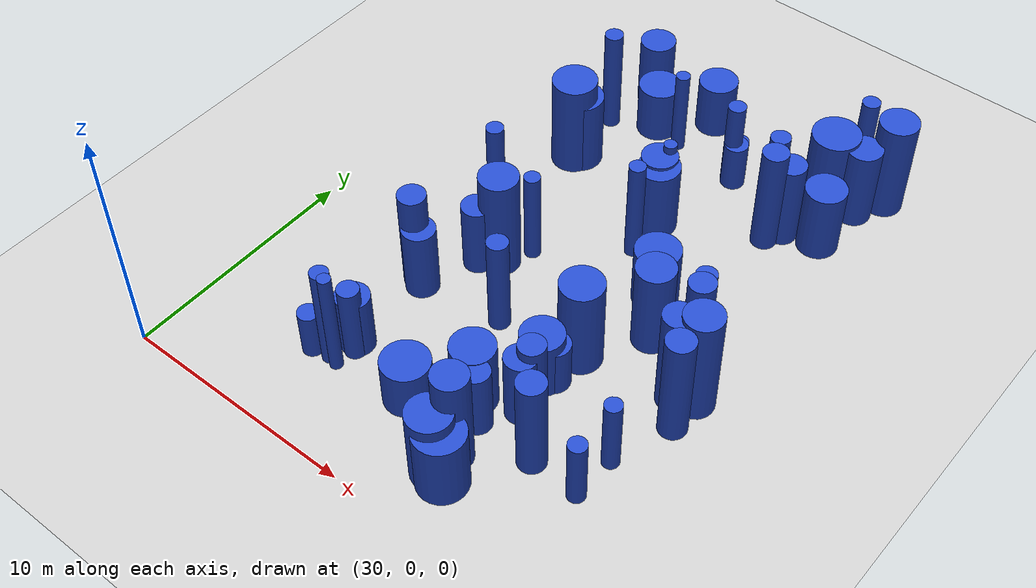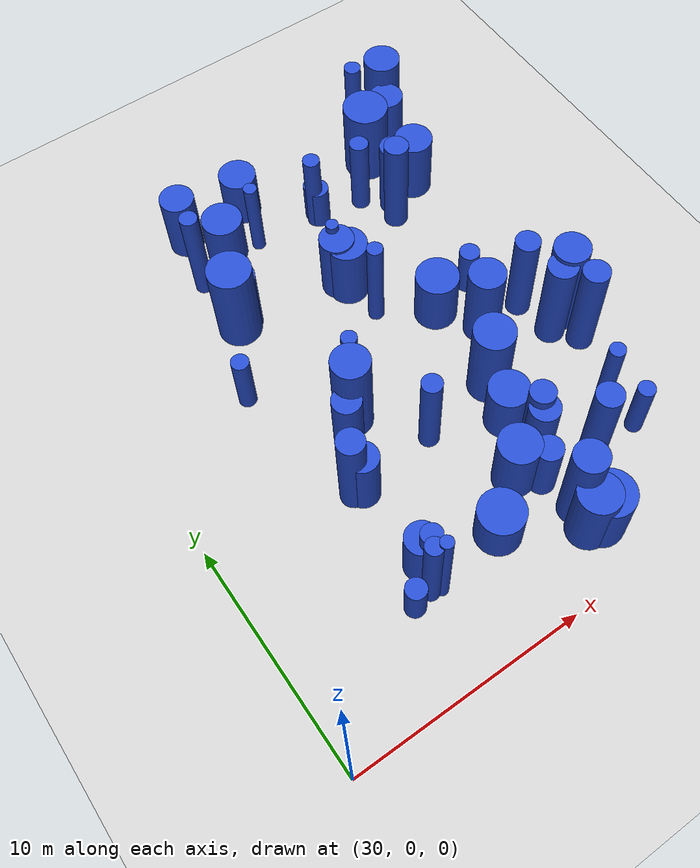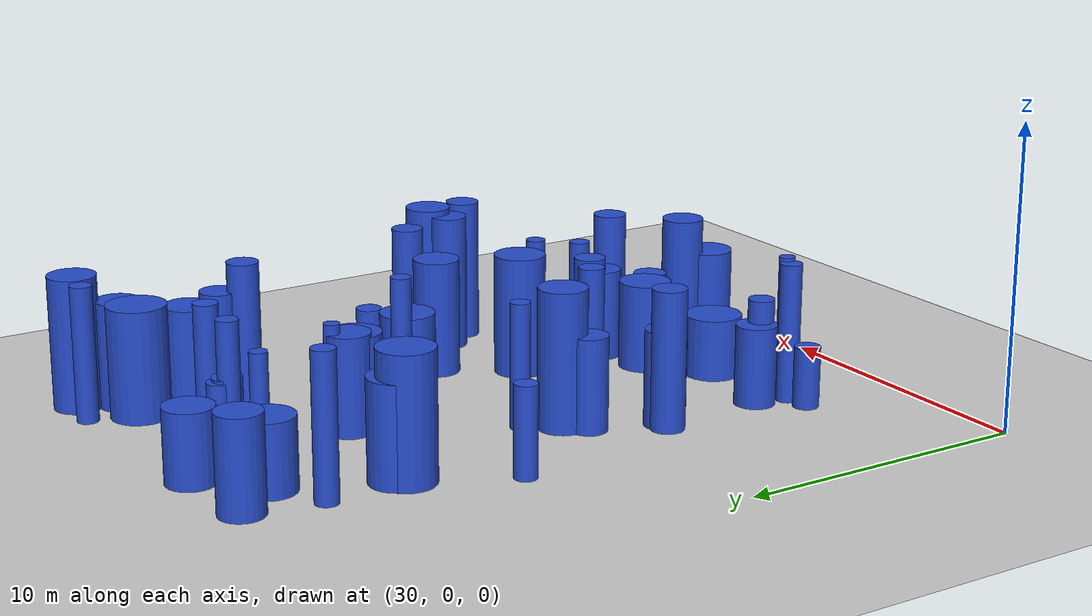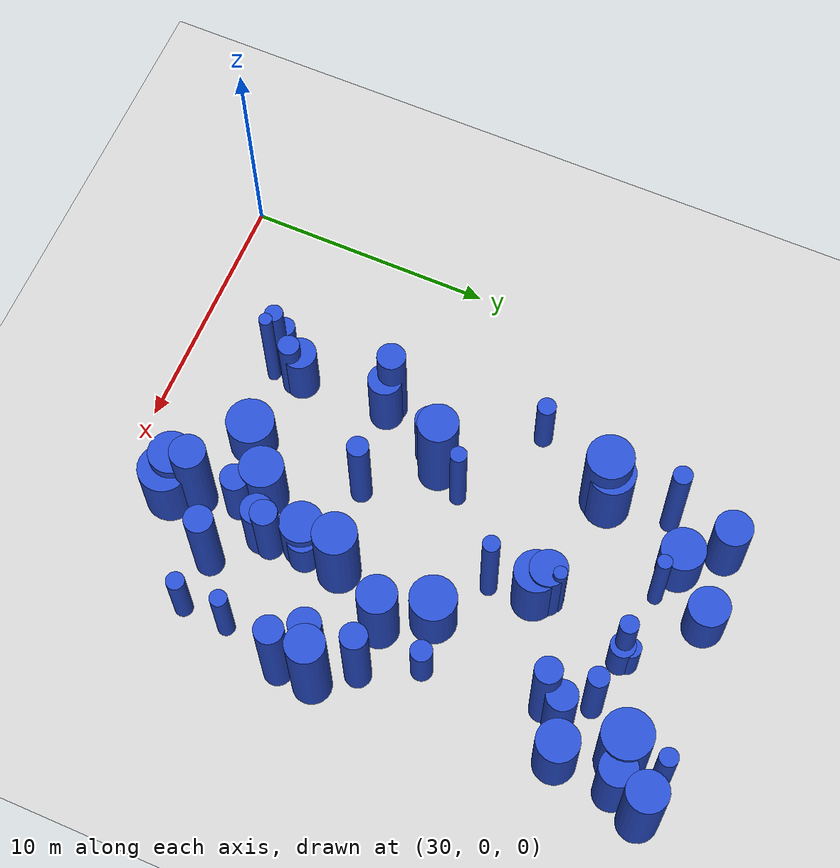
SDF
<sdf version="1.6">
 <world name="default">
  <model name="ground_plane">
   <static>1</static>
   <link name="link">
    <collision name="collision">
     <geometry><plane><normal>0 0 1</normal><size>100 100</size></plane></geometry>
     <surface><friction><ode><mu>100</mu><mu2>50</mu2></ode></friction></surface>
    </collision>
    <visual name="visual">
     <cast_shadows>0</cast_shadows>
     <geometry><plane><normal>0 0 1</normal><size>100 100</size></plane></geometry>
     <material>
      <script><uri>file://media/materials/scripts/gazebo.material</uri><name>Gazebo/Grey</name></script>
     </material>
    </visual>
   </link>
  </model>
  <model name="11">
   <static>0</static>
   <link name="link">
    <inertial>
     <mass>2</mass>
     <inertia><ixx>3.80874</ixx><ixy>0</ixy><ixz>0</ixz><iyy>3.80874</iyy><iyz>0</iyz><izz>0.499703</izz></inertia>
    </inertial>
    <collision name="collision">
     <geometry><cylinder><length>4.62097</length><radius>0.706896</radius></cylinder></geometry>
     <surface><contact><collide_without_contact>1</collide_without_contact></contact></surface>
    </collision>
    <visual name="visual">
     <geometry><cylinder><length>4.62097</length><radius>0.706896</radius></cylinder></geometry>
     <material>
      <script><uri>file://media/materials/scripts/gazebo.material</uri><name>Gazebo/Blue</name></script>
     </material>
    </visual>
    <gravity>0</gravity>
   </link>
   <pose>42.6481 3.33236 2.31048 0 -0 0</pose>
  </model>
  <model name="18">
   <static>0</static>
   <link name="link">
    <inertial>
     <mass>2</mass>
     <inertia>
      <ixx>0.755053</ixx>
      <ixy>0</ixy>
      <ixz>0</ixz>
      <iyy>0.755053</iyy>
      <iyz>0</iyz>
      <izz>0.161134</izz>
     </inertia>
    </inertial>
    <collision name="collision">
     <geometry><cylinder><length>2.01169</length><radius>0.401415</radius></cylinder></geometry>
     <surface><contact><collide_without_contact>1</collide_without_contact></contact></surface>
    </collision>
    <visual name="visual">
     <geometry><cylinder><length>2.01169</length><radius>0.401415</radius></cylinder></geometry>
     <material>
      <script><uri>file://media/materials/scripts/gazebo.material</uri><name>Gazebo/Blue</name></script>
     </material>
    </visual>
    <gravity>0</gravity>
   </link>
   <pose>42.3675 21.2109 1.00585 0 -0 0</pose>
  </model>
  <model name="25">
   <static>0</static>
   <link name="link">
    <inertial>
     <mass>2</mass>
     <inertia><ixx>3.99631</ixx><ixy>0</ixy><ixz>0</ixz><iyy>3.99631</iyy><iyz>0</iyz><izz>0.280628</izz></inertia>
    </inertial>
    <collision name="collision">
     <geometry><cylinder><length>4.80998</length><radius>0.529744</radius></cylinder></geometry>
     <surface><contact><collide_without_contact>1</collide_without_contact></contact></surface>
    </collision>
    <visual name="visual">
     <geometry><cylinder><length>4.80998</length><radius>0.529744</radius></cylinder></geometry>
     <material>
      <script><uri>file://media/materials/scripts/gazebo.material</uri><name>Gazebo/Blue</name></script>
     </material>
    </visual>
    <gravity>0</gravity>
   </link>
   <pose>45.2657 18.9256 2.40499 0 -0 0</pose>
  </model>
  <model name="27">
   <static>0</static>
   <link name="link">
    <inertial>
     <mass>2</mass>
     <inertia><ixx>1.44612</ixx><ixy>0</ixy><ixz>0</ixz><iyy>1.44612</iyy><iyz>0</iyz><izz>0.468528</izz></inertia>
    </inertial>
    <collision name="collision">
     <geometry><cylinder><length>2.69651</length><radius>0.684491</radius></cylinder></geometry>
     <surface><contact><collide_without_contact>1</collide_without_contact></contact></surface>
    </collision>
    <visual name="visual">
     <geometry><cylinder><length>2.69651</length><radius>0.684491</radius></cylinder></geometry>
     <material>
      <script><uri>file://media/materials/scripts/gazebo.material</uri><name>Gazebo/Blue</name></script>
     </material>
    </visual>
    <gravity>0</gravity>
   </link>
   <pose>36.4301 4.9127 1.34825 0 -0 0</pose>
  </model>
  <model name="36">
   <static>0</static>
   <link name="link">
    <inertial>
     <mass>2</mass>
     <inertia><ixx>3.51883</ixx><ixy>0</ixy><ixz>0</ixz><iyy>3.51883</iyy><iyz>0</iyz><izz>0.320908</izz></inertia>
    </inertial>
    <collision name="collision">
     <geometry><cylinder><length>4.4889</length><radius>0.566488</radius></cylinder></geometry>
     <surface><contact><collide_without_contact>1</collide_without_contact></contact></surface>
    </collision>
    <visual name="visual">
     <geometry><cylinder><length>4.4889</length><radius>0.566488</radius></cylinder></geometry>
     <material>
      <script><uri>file://media/materials/scripts/gazebo.material</uri><name>Gazebo/Blue</name></script>
     </material>
    </visual>
    <gravity>0</gravity>
   </link>
   <pose>44.884 4.86893 2.24445 0 -0 0</pose>
  </model>
  <model name="43">
   <static>0</static>
   <link name="link">
    <inertial>
     <mass>2</mass>
     <inertia>
      <ixx>3.81452</ixx>
      <ixy>0</ixy>
      <ixz>0</ixz>
      <iyy>3.81452</iyy>
      <iyz>0</iyz>
      <izz>0.0700208</izz>
     </inertia>
    </inertial>
    <collision name="collision">
     <geometry><cylinder><length>4.76204</length><radius>0.264614</radius></cylinder></geometry>
     <surface><contact><collide_without_contact>1</collide_without_contact></contact></surface>
    </collision>
    <visual name="visual">
     <geometry><cylinder><length>4.76204</length><radius>0.264614</radius></cylinder></geometry>
     <material>
      <script><uri>file://media/materials/scripts/gazebo.material</uri><name>Gazebo/Blue</name></script>
     </material>
    </visual>
    <gravity>0</gravity>
   </link>
   <pose>36.5145 3.67072 2.38102 0 -0 0</pose>
  </model>
  <model name="68">
   <static>0</static>
   <link name="link">
    <inertial>
     <mass>2</mass>
     <inertia><ixx>2.41844</ixx><ixy>0</ixy><ixz>0</ixz><iyy>2.41844</iyy><iyz>0</iyz><izz>0.53192</izz></inertia>
    </inertial>
    <collision name="collision">
     <geometry><cylinder><length>3.59373</length><radius>0.729328</radius></cylinder></geometry>
     <surface><contact><collide_without_contact>1</collide_without_contact></contact></surface>
    </collision>
    <visual name="visual">
     <geometry><cylinder><length>3.59373</length><radius>0.729328</radius></cylinder></geometry>
     <material>
      <script><uri>file://media/materials/scripts/gazebo.material</uri><name>Gazebo/Blue</name></script>
     </material>
    </visual>
    <gravity>0</gravity>
   </link>
   <pose>47.2387 22.452 1.79686 0 -0 0</pose>
  </model>
  <model name="72">
   <static>0</static>
   <link name="link">
    <inertial>
     <mass>2</mass>
     <inertia><ixx>2.09914</ixx><ixy>0</ixy><ixz>0</ixz><iyy>2.09914</iyy><iyz>0</iyz><izz>0.55611</izz></inertia>
    </inertial>
    <collision name="collision">
     <geometry><cylinder><length>3.30553</length><radius>0.745728</radius></cylinder></geometry>
     <surface><contact><collide_without_contact>1</collide_without_contact></contact></surface>
    </collision>
    <visual name="visual">
     <geometry><cylinder><length>3.30553</length><radius>0.745728</radius></cylinder></geometry>
     <material>
      <script><uri>file://media/materials/scripts/gazebo.material</uri><name>Gazebo/Blue</name></script>
     </material>
    </visual>
    <gravity>0</gravity>
   </link>
   <pose>41.124 17.3426 1.65277 0 -0 0</pose>
  </model>
  <model name="74">
   <static>0</static>
   <link name="link">
    <inertial>
     <mass>2</mass>
     <inertia><ixx>3.74291</ixx><ixy>0</ixy><ixz>0</ixz><iyy>3.74291</iyy><iyz>0</iyz><izz>0.319595</izz></inertia>
    </inertial>
    <collision name="collision">
     <geometry><cylinder><length>4.63667</length><radius>0.565327</radius></cylinder></geometry>
     <surface><contact><collide_without_contact>1</collide_without_contact></contact></surface>
    </collision>
    <visual name="visual">
     <geometry><cylinder><length>4.63667</length><radius>0.565327</radius></cylinder></geometry>
     <material>
      <script><uri>file://media/materials/scripts/gazebo.material</uri><name>Gazebo/Blue</name></script>
     </material>
    </visual>
    <gravity>0</gravity>
   </link>
   <pose>36.0139 8.72628 2.31833 0 -0 0</pose>
  </model>
  <model name="86">
   <static>0</static>
   <link name="link">
    <inertial>
     <mass>2</mass>
     <inertia><ixx>2.28266</ixx><ixy>0</ixy><ixz>0</ixz><iyy>2.28266</iyy><iyz>0</iyz><izz>0.845902</izz></inertia>
    </inertial>
    <collision name="collision">
     <geometry><cylinder><length>3.3404</length><radius>0.919729</radius></cylinder></geometry>
     <surface><contact><collide_without_contact>1</collide_without_contact></contact></surface>
    </collision>
    <visual name="visual">
     <geometry><cylinder><length>3.3404</length><radius>0.919729</radius></cylinder></geometry>
     <material>
      <script><uri>file://media/materials/scripts/gazebo.material</uri><name>Gazebo/Blue</name></script>
     </material>
    </visual>
    <gravity>0</gravity>
   </link>
   <pose>36.6208 18.1374 1.6702 0 -0 0</pose>
  </model>
  <model name="108">
   <static>0</static>
   <link name="link">
    <inertial>
     <mass>2</mass>
     <inertia><ixx>1.89458</ixx><ixy>0</ixy><ixz>0</ixz><iyy>1.89458</iyy><iyz>0</iyz><izz>0.771832</izz></inertia>
    </inertial>
    <collision name="collision">
     <geometry><cylinder><length>3.00865</length><radius>0.87854</radius></cylinder></geometry>
     <surface><contact><collide_without_contact>1</collide_without_contact></contact></surface>
    </collision>
    <visual name="visual">
     <geometry><cylinder><length>3.00865</length><radius>0.87854</radius></cylinder></geometry>
     <material>
      <script><uri>file://media/materials/scripts/gazebo.material</uri><name>Gazebo/Blue</name></script>
     </material>
    </visual>
    <gravity>0</gravity>
   </link>
   <pose>41.5256 5.71485 1.50433 0 -0 0</pose>
  </model>
  <model name="134">
   <static>0</static>
   <link name="link">
    <inertial>
     <mass>2</mass>
     <inertia>
      <ixx>0.788618</ixx>
      <ixy>0</ixy>
      <ixz>0</ixz>
      <iyy>0.788618</iyy>
      <iyz>0</iyz>
      <izz>0.186006</izz>
     </inertia>
    </inertial>
    <collision name="collision">
     <geometry><cylinder><length>2.04296</length><radius>0.431284</radius></cylinder></geometry>
     <surface><contact><collide_without_contact>1</collide_without_contact></contact></surface>
    </collision>
    <visual name="visual">
     <geometry><cylinder><length>2.04296</length><radius>0.431284</radius></cylinder></geometry>
     <material>
      <script><uri>file://media/materials/scripts/gazebo.material</uri><name>Gazebo/Blue</name></script>
     </material>
    </visual>
    <gravity>0</gravity>
   </link>
   <pose>35.3037 3.69044 1.02148 0 -0 0</pose>
  </model>
  <model name="142">
   <static>0</static>
   <link name="link">
    <inertial>
     <mass>2</mass>
     <inertia><ixx>2.94757</ixx><ixy>0</ixy><ixz>0</ixz><iyy>2.94757</iyy><iyz>0</iyz><izz>0.109963</izz></inertia>
    </inertial>
    <collision name="collision">
     <geometry><cylinder><length>4.166</length><radius>0.331607</radius></cylinder></geometry>
     <surface><contact><collide_without_contact>1</collide_without_contact></contact></surface>
    </collision>
    <visual name="visual">
     <geometry><cylinder><length>4.166</length><radius>0.331607</radius></cylinder></geometry>
     <material>
      <script><uri>file://media/materials/scripts/gazebo.material</uri><name>Gazebo/Blue</name></script>
     </material>
    </visual>
    <gravity>0</gravity>
   </link>
   <pose>38.5649 12.612 2.083 0 -0 0</pose>
  </model>
  <model name="146">
   <static>0</static>
   <link name="link">
    <inertial>
     <mass>2</mass>
     <inertia>
      <ixx>2.51646</ixx>
      <ixy>0</ixy>
      <ixz>0</ixz>
      <iyy>2.51646</iyy>
      <iyz>0</iyz>
      <izz>0.0857115</izz>
     </inertia>
    </inertial>
    <collision name="collision">
     <geometry><cylinder><length>3.85248</length><radius>0.292765</radius></cylinder></geometry>
     <surface><contact><collide_without_contact>1</collide_without_contact></contact></surface>
    </collision>
    <visual name="visual">
     <geometry><cylinder><length>3.85248</length><radius>0.292765</radius></cylinder></geometry>
     <material>
      <script><uri>file://media/materials/scripts/gazebo.material</uri><name>Gazebo/Blue</name></script>
     </material>
    </visual>
    <gravity>0</gravity>
   </link>
   <pose>39.4106 21.2297 1.92624 0 -0 0</pose>
  </model>
  <model name="157">
   <static>0</static>
   <link name="link">
    <inertial>
     <mass>2</mass>
     <inertia><ixx>3.46825</ixx><ixy>0</ixy><ixz>0</ixz><iyy>3.46825</iyy><iyz>0</iyz><izz>0.134053</izz></inertia>
    </inertial>
    <collision name="collision">
     <geometry><cylinder><length>4.51745</length><radius>0.366133</radius></cylinder></geometry>
     <surface><contact><collide_without_contact>1</collide_without_contact></contact></surface>
    </collision>
    <visual name="visual">
     <geometry><cylinder><length>4.51745</length><radius>0.366133</radius></cylinder></geometry>
     <material>
      <script><uri>file://media/materials/scripts/gazebo.material</uri><name>Gazebo/Blue</name></script>
     </material>
    </visual>
    <gravity>0</gravity>
   </link>
   <pose>46.4594 23.9461 2.25872 0 -0 0</pose>
  </model>
  <model name="159">
   <static>0</static>
   <link name="link">
    <inertial>
     <mass>2</mass>
     <inertia><ixx>1.47575</ixx><ixy>0</ixy><ixz>0</ixz><iyy>1.47575</iyy><iyz>0</iyz><izz>0.742642</izz></inertia>
    </inertial>
    <collision name="collision">
     <geometry><cylinder><length>2.57422</length><radius>0.861767</radius></cylinder></geometry>
     <surface><contact><collide_without_contact>1</collide_without_contact></contact></surface>
    </collision>
    <visual name="visual">
     <geometry><cylinder><length>2.57422</length><radius>0.861767</radius></cylinder></geometry>
     <material>
      <script><uri>file://media/materials/scripts/gazebo.material</uri><name>Gazebo/Blue</name></script>
     </material>
    </visual>
    <gravity>0</gravity>
   </link>
   <pose>42.8436 7.96022 1.28711 0 -0 0</pose>
  </model>
  <model name="160">
   <static>0</static>
   <link name="link">
    <inertial>
     <mass>2</mass>
     <inertia><ixx>2.06953</ixx><ixy>0</ixy><ixz>0</ixz><iyy>2.06953</iyy><iyz>0</iyz><izz>0.748875</izz></inertia>
    </inertial>
    <collision name="collision">
     <geometry><cylinder><length>3.18913</length><radius>0.865375</radius></cylinder></geometry>
     <surface><contact><collide_without_contact>1</collide_without_contact></contact></surface>
    </collision>
    <visual name="visual">
     <geometry><cylinder><length>3.18913</length><radius>0.865375</radius></cylinder></geometry>
     <material>
      <script><uri>file://media/materials/scripts/gazebo.material</uri><name>Gazebo/Blue</name></script>
     </material>
    </visual>
    <gravity>0</gravity>
   </link>
   <pose>41.3788 16.9585 1.59456 0 -0 0</pose>
  </model>
  <model name="168">
   <static>0</static>
   <link name="link">
    <inertial>
     <mass>2</mass>
     <inertia><ixx>3.91282</ixx><ixy>0</ixy><ixz>0</ixz><iyy>3.91282</iyy><iyz>0</iyz><izz>0.64338</izz></inertia>
    </inertial>
    <collision name="collision">
     <geometry><cylinder><length>4.64185</length><radius>0.80211</radius></cylinder></geometry>
     <surface><contact><collide_without_contact>1</collide_without_contact></contact></surface>
    </collision>
    <visual name="visual">
     <geometry><cylinder><length>4.64185</length><radius>0.80211</radius></cylinder></geometry>
     <material>
      <script><uri>file://media/materials/scripts/gazebo.material</uri><name>Gazebo/Blue</name></script>
     </material>
    </visual>
    <gravity>0</gravity>
   </link>
   <pose>37.8783 11.4759 2.32093 0 -0 0</pose>
  </model>
  <model name="170">
   <static>0</static>
   <link name="link">
    <inertial>
     <mass>2</mass>
     <inertia><ixx>4.14608</ixx><ixy>0</ixy><ixz>0</ixz><iyy>4.14608</iyy><iyz>0</iyz><izz>0.325372</izz></inertia>
    </inertial>
    <collision name="collision">
     <geometry><cylinder><length>4.8888</length><radius>0.570414</radius></cylinder></geometry>
     <surface><contact><collide_without_contact>1</collide_without_contact></contact></surface>
    </collision>
    <visual name="visual">
     <geometry><cylinder><length>4.8888</length><radius>0.570414</radius></cylinder></geometry>
     <material>
      <script><uri>file://media/materials/scripts/gazebo.material</uri><name>Gazebo/Blue</name></script>
     </material>
    </visual>
    <gravity>0</gravity>
   </link>
   <pose>47.853 9.16861 2.4444 0 -0 0</pose>
  </model>
  <model name="173">
   <static>0</static>
   <link name="link">
    <inertial>
     <mass>2</mass>
     <inertia><ixx>2.65741</ixx><ixy>0</ixy><ixz>0</ixz><iyy>2.65741</iyy><iyz>0</iyz><izz>0.370708</izz></inertia>
    </inertial>
    <collision name="collision">
     <geometry><cylinder><length>3.85127</length><radius>0.608858</radius></cylinder></geometry>
     <surface><contact><collide_without_contact>1</collide_without_contact></contact></surface>
    </collision>
    <visual name="visual">
     <geometry><cylinder><length>3.85127</length><radius>0.608858</radius></cylinder></geometry>
     <material>
      <script><uri>file://media/materials/scripts/gazebo.material</uri><name>Gazebo/Blue</name></script>
     </material>
    </visual>
    <gravity>0</gravity>
   </link>
   <pose>45.6421 19.6514 1.92564 0 -0 0</pose>
  </model>
  <model name="179">
   <static>0</static>
   <link name="link">
    <inertial>
     <mass>2</mass>
     <inertia>
      <ixx>0.859238</ixx>
      <ixy>0</ixy>
      <ixz>0</ixz>
      <iyy>0.859238</iyy>
      <iyz>0</iyz>
      <izz>0.245358</izz>
     </inertia>
    </inertial>
    <collision name="collision">
     <geometry><cylinder><length>2.10223</length><radius>0.495337</radius></cylinder></geometry>
     <surface><contact><collide_without_contact>1</collide_without_contact></contact></surface>
    </collision>
    <visual name="visual">
     <geometry><cylinder><length>2.10223</length><radius>0.495337</radius></cylinder></geometry>
     <material>
      <script><uri>file://media/materials/scripts/gazebo.material</uri><name>Gazebo/Blue</name></script>
     </material>
    </visual>
    <gravity>0</gravity>
   </link>
   <pose>42.4258 20.9007 1.05111 0 -0 0</pose>
  </model>
  <model name="182">
   <static>0</static>
   <link name="link">
    <inertial>
     <mass>2</mass>
     <inertia><ixx>2.82944</ixx><ixy>0</ixy><ixz>0</ixz><iyy>2.82944</iyy><iyz>0</iyz><izz>0.978961</izz></inertia>
    </inertial>
    <collision name="collision">
     <geometry><cylinder><length>3.74697</length><radius>0.989425</radius></cylinder></geometry>
     <surface><contact><collide_without_contact>1</collide_without_contact></contact></surface>
    </collision>
    <visual name="visual">
     <geometry><cylinder><length>3.74697</length><radius>0.989425</radius></cylinder></geometry>
     <material>
      <script><uri>file://media/materials/scripts/gazebo.material</uri><name>Gazebo/Blue</name></script>
     </material>
    </visual>
    <gravity>0</gravity>
   </link>
   <pose>46.0089 22.3169 1.87348 0 -0 0</pose>
  </model>
  <model name="184">
   <static>0</static>
   <link name="link">
    <inertial>
     <mass>2</mass>
     <inertia><ixx>2.09227</ixx><ixy>0</ixy><ixz>0</ixz><iyy>2.09227</iyy><iyz>0</iyz><izz>0.189244</izz></inertia>
    </inertial>
    <collision name="collision">
     <geometry><cylinder><length>3.46206</length><radius>0.435022</radius></cylinder></geometry>
     <surface><contact><collide_without_contact>1</collide_without_contact></contact></surface>
    </collision>
    <visual name="visual">
     <geometry><cylinder><length>3.46206</length><radius>0.435022</radius></cylinder></geometry>
     <material>
      <script><uri>file://media/materials/scripts/gazebo.material</uri><name>Gazebo/Blue</name></script>
     </material>
    </visual>
    <gravity>0</gravity>
   </link>
   <pose>36.6118 4.59693 1.73103 0 -0 0</pose>
  </model>
  <model name="207">
   <static>0</static>
   <link name="link">
    <inertial>
     <mass>2</mass>
     <inertia><ixx>1.64041</ixx><ixy>0</ixy><ixz>0</ixz><iyy>1.64041</iyy><iyz>0</iyz><izz>0.317398</izz></inertia>
    </inertial>
    <collision name="collision">
     <geometry><cylinder><length>2.98165</length><radius>0.563381</radius></cylinder></geometry>
     <surface><contact><collide_without_contact>1</collide_without_contact></contact></surface>
    </collision>
    <visual name="visual">
     <geometry><cylinder><length>2.98165</length><radius>0.563381</radius></cylinder></geometry>
     <material>
      <script><uri>file://media/materials/scripts/gazebo.material</uri><name>Gazebo/Blue</name></script>
     </material>
    </visual>
    <gravity>0</gravity>
   </link>
   <pose>42.3185 4.94348 1.49083 0 -0 0</pose>
  </model>
  <model name="215">
   <static>0</static>
   <link name="link">
    <inertial>
     <mass>2</mass>
     <inertia><ixx>1.82664</ixx><ixy>0</ixy><ixz>0</ixz><iyy>1.82664</iyy><iyz>0</iyz><izz>0.408005</izz></inertia>
    </inertial>
    <collision name="collision">
     <geometry><cylinder><length>3.12023</length><radius>0.638753</radius></cylinder></geometry>
     <surface><contact><collide_without_contact>1</collide_without_contact></contact></surface>
    </collision>
    <visual name="visual">
     <geometry><cylinder><length>3.12023</length><radius>0.638753</radius></cylinder></geometry>
     <material>
      <script><uri>file://media/materials/scripts/gazebo.material</uri><name>Gazebo/Blue</name></script>
     </material>
    </visual>
    <gravity>0</gravity>
   </link>
   <pose>43.2111 6.31714 1.56011 0 -0 0</pose>
  </model>
  <model name="222">
   <static>0</static>
   <link name="link">
    <inertial>
     <mass>2</mass>
     <inertia><ixx>1.93129</ixx><ixy>0</ixy><ixz>0</ixz><iyy>1.93129</iyy><iyz>0</iyz><izz>0.551165</izz></inertia>
    </inertial>
    <collision name="collision">
     <geometry><cylinder><length>3.15186</length><radius>0.742405</radius></cylinder></geometry>
     <surface><contact><collide_without_contact>1</collide_without_contact></contact></surface>
    </collision>
    <visual name="visual">
     <geometry><cylinder><length>3.15186</length><radius>0.742405</radius></cylinder></geometry>
     <material>
      <script><uri>file://media/materials/scripts/gazebo.material</uri><name>Gazebo/Blue</name></script>
     </material>
    </visual>
    <gravity>0</gravity>
   </link>
   <pose>36.8387 23.1165 1.57593 0 -0 0</pose>
  </model>
  <model name="226">
   <static>0</static>
   <link name="link">
    <inertial>
     <mass>2</mass>
     <inertia><ixx>1.93903</ixx><ixy>0</ixy><ixz>0</ixz><iyy>1.93903</iyy><iyz>0</iyz><izz>0.701202</izz></inertia>
    </inertial>
    <collision name="collision">
     <geometry><cylinder><length>3.08716</length><radius>0.837378</radius></cylinder></geometry>
     <surface><contact><collide_without_contact>1</collide_without_contact></contact></surface>
    </collision>
    <visual name="visual">
     <geometry><cylinder><length>3.08716</length><radius>0.837378</radius></cylinder></geometry>
     <material>
      <script><uri>file://media/materials/scripts/gazebo.material</uri><name>Gazebo/Blue</name></script>
     </material>
    </visual>
    <gravity>0</gravity>
   </link>
   <pose>47.0281 20.0922 1.54358 0 -0 0</pose>
  </model>
  <model name="227">
   <static>0</static>
   <link name="link">
    <inertial>
     <mass>2</mass>
     <inertia><ixx>1.84648</ixx><ixy>0</ixy><ixz>0</ixz><iyy>1.84648</iyy><iyz>0</iyz><izz>0.377681</izz></inertia>
    </inertial>
    <collision name="collision">
     <geometry><cylinder><length>3.15371</length><radius>0.614557</radius></cylinder></geometry>
     <surface><contact><collide_without_contact>1</collide_without_contact></contact></surface>
    </collision>
    <visual name="visual">
     <geometry><cylinder><length>3.15371</length><radius>0.614557</radius></cylinder></geometry>
     <material>
      <script><uri>file://media/materials/scripts/gazebo.material</uri><name>Gazebo/Blue</name></script>
     </material>
    </visual>
    <gravity>0</gravity>
   </link>
   <pose>37.2464 10.8875 1.57685 0 -0 0</pose>
  </model>
  <model name="229">
   <static>0</static>
   <link name="link">
    <inertial>
     <mass>2</mass>
     <inertia><ixx>1.56166</ixx><ixy>0</ixy><ixz>0</ixz><iyy>1.56166</iyy><iyz>0</iyz><izz>0.140164</izz></inertia>
    </inertial>
    <collision name="collision">
     <geometry><cylinder><length>2.99157</length><radius>0.374385</radius></cylinder></geometry>
     <surface><contact><collide_without_contact>1</collide_without_contact></contact></surface>
    </collision>
    <visual name="visual">
     <geometry><cylinder><length>2.99157</length><radius>0.374385</radius></cylinder></geometry>
     <material>
      <script><uri>file://media/materials/scripts/gazebo.material</uri><name>Gazebo/Blue</name></script>
     </material>
    </visual>
    <gravity>0</gravity>
   </link>
   <pose>34.8659 14.758 1.49578 0 -0 0</pose>
  </model>
  <model name="230">
   <static>0</static>
   <link name="link">
    <inertial>
     <mass>2</mass>
     <inertia><ixx>3.64776</ixx><ixy>0</ixy><ixz>0</ixz><iyy>3.64776</iyy><iyz>0</iyz><izz>0.643686</izz></inertia>
    </inertial>
    <collision name="collision">
     <geometry><cylinder><length>4.46716</length><radius>0.8023</radius></cylinder></geometry>
     <surface><contact><collide_without_contact>1</collide_without_contact></contact></surface>
    </collision>
    <visual name="visual">
     <geometry><cylinder><length>4.46716</length><radius>0.8023</radius></cylinder></geometry>
     <material>
      <script><uri>file://media/materials/scripts/gazebo.material</uri><name>Gazebo/Blue</name></script>
     </material>
    </visual>
    <gravity>0</gravity>
   </link>
   <pose>47.8741 23.7045 2.23358 0 -0 0</pose>
  </model>
  <model name="234">
   <static>0</static>
   <link name="link">
    <inertial>
     <mass>2</mass>
     <inertia><ixx>2.23863</ixx><ixy>0</ixy><ixz>0</ixz><iyy>2.23863</iyy><iyz>0</iyz><izz>0.288161</izz></inertia>
    </inertial>
    <collision name="collision">
     <geometry><cylinder><length>3.54504</length><radius>0.536806</radius></cylinder></geometry>
     <surface><contact><collide_without_contact>1</collide_without_contact></contact></surface>
    </collision>
    <visual name="visual">
     <geometry><cylinder><length>3.54504</length><radius>0.536806</radius></cylinder></geometry>
     <material>
      <script><uri>file://media/materials/scripts/gazebo.material</uri><name>Gazebo/Blue</name></script>
     </material>
    </visual>
    <gravity>0</gravity>
   </link>
   <pose>43.3808 6.73123 1.77252 0 -0 0</pose>
  </model>
  <model name="248">
   <static>0</static>
   <link name="link">
    <inertial>
     <mass>2</mass>
     <inertia><ixx>1.91592</ixx><ixy>0</ixy><ixz>0</ixz><iyy>1.91592</iyy><iyz>0</iyz><izz>0.999797</izz></inertia>
    </inertial>
    <collision name="collision">
     <geometry><cylinder><length>2.91481</length><radius>0.999898</radius></cylinder></geometry>
     <surface><contact><collide_without_contact>1</collide_without_contact></contact></surface>
    </collision>
    <visual name="visual">
     <geometry><cylinder><length>2.91481</length><radius>0.999898</radius></cylinder></geometry>
     <material>
      <script><uri>file://media/materials/scripts/gazebo.material</uri><name>Gazebo/Blue</name></script>
     </material>
    </visual>
    <gravity>0</gravity>
   </link>
   <pose>43.0164 2.26383 1.45741 0 -0 0</pose>
  </model>
  <model name="261">
   <static>0</static>
   <link name="link">
    <inertial>
     <mass>2</mass>
     <inertia><ixx>3.86022</ixx><ixy>0</ixy><ixz>0</ixz><iyy>3.86022</iyy><iyz>0</iyz><izz>0.401054</izz></inertia>
    </inertial>
    <collision name="collision">
     <geometry><cylinder><length>4.68596</length><radius>0.633288</radius></cylinder></geometry>
     <surface><contact><collide_without_contact>1</collide_without_contact></contact></surface>
    </collision>
    <visual name="visual">
     <geometry><cylinder><length>4.68596</length><radius>0.633288</radius></cylinder></geometry>
     <material>
      <script><uri>file://media/materials/scripts/gazebo.material</uri><name>Gazebo/Blue</name></script>
     </material>
    </visual>
    <gravity>0</gravity>
   </link>
   <pose>47.0713 10.2075 2.34298 0 -0 0</pose>
  </model>
  <model name="273">
   <static>0</static>
   <link name="link">
    <inertial>
     <mass>2</mass>
     <inertia><ixx>2.92525</ixx><ixy>0</ixy><ixz>0</ixz><iyy>2.92525</iyy><iyz>0</iyz><izz>0.610163</izz></inertia>
    </inertial>
    <collision name="collision">
     <geometry><cylinder><length>3.96497</length><radius>0.781129</radius></cylinder></geometry>
     <surface><contact><collide_without_contact>1</collide_without_contact></contact></surface>
    </collision>
    <visual name="visual">
     <geometry><cylinder><length>3.96497</length><radius>0.781129</radius></cylinder></geometry>
     <material>
      <script><uri>file://media/materials/scripts/gazebo.material</uri><name>Gazebo/Blue</name></script>
     </material>
    </visual>
    <gravity>0</gravity>
   </link>
   <pose>44.804 12.0158 1.98249 0 -0 0</pose>
  </model>
  <model name="278">
   <static>0</static>
   <link name="link">
    <inertial>
     <mass>2</mass>
     <inertia><ixx>1.01768</ixx><ixy>0</ixy><ixz>0</ixz><iyy>1.01768</iyy><iyz>0</iyz><izz>0.189489</izz></inertia>
    </inertial>
    <collision name="collision">
     <geometry><cylinder><length>2.35321</length><radius>0.435303</radius></cylinder></geometry>
     <surface><contact><collide_without_contact>1</collide_without_contact></contact></surface>
    </collision>
    <visual name="visual">
     <geometry><cylinder><length>2.35321</length><radius>0.435303</radius></cylinder></geometry>
     <material>
      <script><uri>file://media/materials/scripts/gazebo.material</uri><name>Gazebo/Blue</name></script>
     </material>
    </visual>
    <gravity>0</gravity>
   </link>
   <pose>45.6592 14.1516 1.17661 0 -0 0</pose>
  </model>
  <model name="280">
   <static>0</static>
   <link name="link">
    <inertial>
     <mass>2</mass>
     <inertia><ixx>1.53437</ixx><ixy>0</ixy><ixz>0</ixz><iyy>1.53437</iyy><iyz>0</iyz><izz>0.133804</izz></inertia>
    </inertial>
    <collision name="collision">
     <geometry><cylinder><length>2.96729</length><radius>0.365792</radius></cylinder></geometry>
     <surface><contact><collide_without_contact>1</collide_without_contact></contact></surface>
    </collision>
    <visual name="visual">
     <geometry><cylinder><length>2.96729</length><radius>0.365792</radius></cylinder></geometry>
     <material>
      <script><uri>file://media/materials/scripts/gazebo.material</uri><name>Gazebo/Blue</name></script>
     </material>
    </visual>
    <gravity>0</gravity>
   </link>
   <pose>46.9613 4.75114 1.48365 0 -0 0</pose>
  </model>
  <model name="285">
   <static>0</static>
   <link name="link">
    <inertial>
     <mass>2</mass>
     <inertia><ixx>3.61661</ixx><ixy>0</ixy><ixz>0</ixz><iyy>3.61661</iyy><iyz>0</iyz><izz>0.281375</izz></inertia>
    </inertial>
    <collision name="collision">
     <geometry><cylinder><length>4.56679</length><radius>0.530447</radius></cylinder></geometry>
     <surface><contact><collide_without_contact>1</collide_without_contact></contact></surface>
    </collision>
    <visual name="visual">
     <geometry><cylinder><length>4.56679</length><radius>0.530447</radius></cylinder></geometry>
     <material>
      <script><uri>file://media/materials/scripts/gazebo.material</uri><name>Gazebo/Blue</name></script>
     </material>
    </visual>
    <gravity>0</gravity>
   </link>
   <pose>46.7733 12.0043 2.28339 0 -0 0</pose>
  </model>
  <model name="292">
   <static>0</static>
   <link name="link">
    <inertial>
     <mass>2</mass>
     <inertia><ixx>3.68193</ixx><ixy>0</ixy><ixz>0</ixz><iyy>3.68193</iyy><iyz>0</iyz><izz>0.132964</izz></inertia>
    </inertial>
    <collision name="collision">
     <geometry><cylinder><length>4.65754</length><radius>0.364643</radius></cylinder></geometry>
     <surface><contact><collide_without_contact>1</collide_without_contact></contact></surface>
    </collision>
    <visual name="visual">
     <geometry><cylinder><length>4.65754</length><radius>0.364643</radius></cylinder></geometry>
     <material>
      <script><uri>file://media/materials/scripts/gazebo.material</uri><name>Gazebo/Blue</name></script>
     </material>
    </visual>
    <gravity>0</gravity>
   </link>
   <pose>36.1064 3.82481 2.32877 0 -0 0</pose>
  </model>
  <model name="298">
   <static>0</static>
   <link name="link">
    <inertial>
     <mass>2</mass>
     <inertia><ixx>3.20943</ixx><ixy>0</ixy><ixz>0</ixz><iyy>3.20943</iyy><iyz>0</iyz><izz>0.753446</izz></inertia>
    </inertial>
    <collision name="collision">
     <geometry><cylinder><length>4.12265</length><radius>0.868013</radius></cylinder></geometry>
     <surface><contact><collide_without_contact>1</collide_without_contact></contact></surface>
    </collision>
    <visual name="visual">
     <geometry><cylinder><length>4.12265</length><radius>0.868013</radius></cylinder></geometry>
     <material>
      <script><uri>file://media/materials/scripts/gazebo.material</uri><name>Gazebo/Blue</name></script>
     </material>
    </visual>
    <gravity>0</gravity>
   </link>
   <pose>43.2944 9.63657 2.06133 0 -0 0</pose>
  </model>
  <model name="306">
   <static>0</static>
   <link name="link">
    <inertial>
     <mass>2</mass>
     <inertia>
      <ixx>2.23535</ixx>
      <ixy>0</ixy>
      <ixz>0</ixz>
      <iyy>2.23535</iyy>
      <iyz>0</iyz>
      <izz>0.0724104</izz>
     </inertia>
    </inertial>
    <collision name="collision">
     <geometry><cylinder><length>3.63247</length><radius>0.269092</radius></cylinder></geometry>
     <surface><contact><collide_without_contact>1</collide_without_contact></contact></surface>
    </collision>
    <visual name="visual">
     <geometry><cylinder><length>3.63247</length><radius>0.269092</radius></cylinder></geometry>
     <material>
      <script><uri>file://media/materials/scripts/gazebo.material</uri><name>Gazebo/Blue</name></script>
     </material>
    </visual>
    <gravity>0</gravity>
   </link>
   <pose>41.2481 17.8399 1.81624 0 -0 0</pose>
  </model>
  <model name="309">
   <static>0</static>
   <link name="link">
    <inertial>
     <mass>2</mass>
     <inertia><ixx>2.62935</ixx><ixy>0</ixy><ixz>0</ixz><iyy>2.62935</iyy><iyz>0</iyz><izz>0.170985</izz></inertia>
    </inertial>
    <collision name="collision">
     <geometry><cylinder><length>3.90681</length><radius>0.413503</radius></cylinder></geometry>
     <surface><contact><collide_without_contact>1</collide_without_contact></contact></surface>
    </collision>
    <visual name="visual">
     <geometry><cylinder><length>3.90681</length><radius>0.413503</radius></cylinder></geometry>
     <material>
      <script><uri>file://media/materials/scripts/gazebo.material</uri><name>Gazebo/Blue</name></script>
     </material>
    </visual>
    <gravity>0</gravity>
   </link>
   <pose>44.5018 20.6082 1.95341 0 -0 0</pose>
  </model>
  <model name="314">
   <static>0</static>
   <link name="link">
    <inertial>
     <mass>2</mass>
     <inertia><ixx>1.33091</ixx><ixy>0</ixy><ixz>0</ixz><iyy>1.33091</iyy><iyz>0</iyz><izz>0.780506</izz></inertia>
    </inertial>
    <collision name="collision">
     <geometry><cylinder><length>2.3757</length><radius>0.883463</radius></cylinder></geometry>
     <surface><contact><collide_without_contact>1</collide_without_contact></contact></surface>
    </collision>
    <visual name="visual">
     <geometry><cylinder><length>2.3757</length><radius>0.883463</radius></cylinder></geometry>
     <material>
      <script><uri>file://media/materials/scripts/gazebo.material</uri><name>Gazebo/Blue</name></script>
     </material>
    </visual>
    <gravity>0</gravity>
   </link>
   <pose>38.0568 21.6486 1.18785 0 -0 0</pose>
  </model>
  <model name="326">
   <static>0</static>
   <link name="link">
    <inertial>
     <mass>2</mass>
     <inertia><ixx>1.87151</ixx><ixy>0</ixy><ixz>0</ixz><iyy>1.87151</iyy><iyz>0</iyz><izz>0.119067</izz></inertia>
    </inertial>
    <collision name="collision">
     <geometry><cylinder><length>3.29725</length><radius>0.345061</radius></cylinder></geometry>
     <surface><contact><collide_without_contact>1</collide_without_contact></contact></surface>
    </collision>
    <visual name="visual">
     <geometry><cylinder><length>3.29725</length><radius>0.345061</radius></cylinder></geometry>
     <material>
      <script><uri>file://media/materials/scripts/gazebo.material</uri><name>Gazebo/Blue</name></script>
     </material>
    </visual>
    <gravity>0</gravity>
   </link>
   <pose>47.0337 6.60115 1.64862 0 -0 0</pose>
  </model>
  <model name="337">
   <static>0</static>
   <link name="link">
    <inertial>
     <mass>2</mass>
     <inertia><ixx>1.19736</ixx><ixy>0</ixy><ixz>0</ixz><iyy>1.19736</iyy><iyz>0</iyz><izz>0.931327</izz></inertia>
    </inertial>
    <collision name="collision">
     <geometry><cylinder><length>2.09527</length><radius>0.965053</radius></cylinder></geometry>
     <surface><contact><collide_without_contact>1</collide_without_contact></contact></surface>
    </collision>
    <visual name="visual">
     <geometry><cylinder><length>2.09527</length><radius>0.965053</radius></cylinder></geometry>
     <material>
      <script><uri>file://media/materials/scripts/gazebo.material</uri><name>Gazebo/Blue</name></script>
     </material>
    </visual>
    <gravity>0</gravity>
   </link>
   <pose>39.6051 4.23765 1.04764 0 -0 0</pose>
  </model>
  <model name="344">
   <static>0</static>
   <link name="link">
    <inertial>
     <mass>2</mass>
     <inertia><ixx>4.28664</ixx><ixy>0</ixy><ixz>0</ixz><iyy>4.28664</iyy><iyz>0</iyz><izz>0.592343</izz></inertia>
    </inertial>
    <collision name="collision">
     <geometry><cylinder><length>4.89314</length><radius>0.769638</radius></cylinder></geometry>
     <surface><contact><collide_without_contact>1</collide_without_contact></contact></surface>
    </collision>
    <visual name="visual">
     <geometry><cylinder><length>4.89314</length><radius>0.769638</radius></cylinder></geometry>
     <material>
      <script><uri>file://media/materials/scripts/gazebo.material</uri><name>Gazebo/Blue</name></script>
     </material>
    </visual>
    <gravity>0</gravity>
   </link>
   <pose>47.8223 10.5793 2.44657 0 -0 0</pose>
  </model>
  <model name="386">
   <static>0</static>
   <link name="link">
    <inertial>
     <mass>2</mass>
     <inertia><ixx>1.31734</ixx><ixy>0</ixy><ixz>0</ixz><iyy>1.31734</iyy><iyz>0</iyz><izz>0.670785</izz></inertia>
    </inertial>
    <collision name="collision">
     <geometry><cylinder><length>2.42728</length><radius>0.819015</radius></cylinder></geometry>
     <surface><contact><collide_without_contact>1</collide_without_contact></contact></surface>
    </collision>
    <visual name="visual">
     <geometry><cylinder><length>2.42728</length><radius>0.819015</radius></cylinder></geometry>
     <material>
      <script><uri>file://media/materials/scripts/gazebo.material</uri><name>Gazebo/Blue</name></script>
     </material>
    </visual>
    <gravity>0</gravity>
   </link>
   <pose>39.8519 23.3318 1.21364 0 -0 0</pose>
  </model>
  <model name="407">
   <static>0</static>
   <link name="link">
    <inertial>
     <mass>2</mass>
     <inertia><ixx>1.61209</ixx><ixy>0</ixy><ixz>0</ixz><iyy>1.61209</iyy><iyz>0</iyz><izz>0.849822</izz></inertia>
    </inertial>
    <collision name="collision">
     <geometry><cylinder><length>2.66891</length><radius>0.921858</radius></cylinder></geometry>
     <surface><contact><collide_without_contact>1</collide_without_contact></contact></surface>
    </collision>
    <visual name="visual">
     <geometry><cylinder><length>2.66891</length><radius>0.921858</radius></cylinder></geometry>
     <material>
      <script><uri>file://media/materials/scripts/gazebo.material</uri><name>Gazebo/Blue</name></script>
     </material>
    </visual>
    <gravity>0</gravity>
   </link>
   <pose>43.6881 13.7773 1.33446 0 -0 0</pose>
  </model>
  <model name="417">
   <static>0</static>
   <link name="link">
    <inertial>
     <mass>2</mass>
     <inertia><ixx>2.31997</ixx><ixy>0</ixy><ixz>0</ixz><iyy>2.31997</iyy><iyz>0</iyz><izz>0.779178</izz></inertia>
    </inertial>
    <collision name="collision">
     <geometry><cylinder><length>3.40327</length><radius>0.88271</radius></cylinder></geometry>
     <surface><contact><collide_without_contact>1</collide_without_contact></contact></surface>
    </collision>
    <visual name="visual">
     <geometry><cylinder><length>3.40327</length><radius>0.88271</radius></cylinder></geometry>
     <material>
      <script><uri>file://media/materials/scripts/gazebo.material</uri><name>Gazebo/Blue</name></script>
     </material>
    </visual>
    <gravity>0</gravity>
   </link>
   <pose>42.4914 2.38987 1.70164 0 -0 0</pose>
  </model>
  <model name="418">
   <static>0</static>
   <link name="link">
    <inertial>
     <mass>2</mass>
     <inertia><ixx>3.63842</ixx><ixy>0</ixy><ixz>0</ixz><iyy>3.63842</iyy><iyz>0</iyz><izz>0.115024</izz></inertia>
    </inertial>
    <collision name="collision">
     <geometry><cylinder><length>4.63524</length><radius>0.339152</radius></cylinder></geometry>
     <surface><contact><collide_without_contact>1</collide_without_contact></contact></surface>
    </collision>
    <visual name="visual">
     <geometry><cylinder><length>4.63524</length><radius>0.339152</radius></cylinder></geometry>
     <material>
      <script><uri>file://media/materials/scripts/gazebo.material</uri><name>Gazebo/Blue</name></script>
     </material>
    </visual>
    <gravity>0</gravity>
   </link>
   <pose>41.5707 15.1851 2.31762 0 -0 0</pose>
  </model>
  <model name="431">
   <static>0</static>
   <link name="link">
    <inertial>
     <mass>2</mass>
     <inertia><ixx>3.43789</ixx><ixy>0</ixy><ixz>0</ixz><iyy>3.43789</iyy><iyz>0</iyz><izz>0.855296</izz></inertia>
    </inertial>
    <collision name="collision">
     <geometry><cylinder><length>4.24988</length><radius>0.924822</radius></cylinder></geometry>
     <surface><contact><collide_without_contact>1</collide_without_contact></contact></surface>
    </collision>
    <visual name="visual">
     <geometry><cylinder><length>4.24988</length><radius>0.924822</radius></cylinder></geometry>
     <material>
      <script><uri>file://media/materials/scripts/gazebo.material</uri><name>Gazebo/Blue</name></script>
     </material>
    </visual>
    <gravity>0</gravity>
   </link>
   <pose>36.4376 17.9083 2.12494 0 -0 0</pose>
  </model>
  <model name="437">
   <static>0</static>
   <link name="link">
    <inertial>
     <mass>2</mass>
     <inertia><ixx>3.35057</ixx><ixy>0</ixy><ixz>0</ixz><iyy>3.35057</iyy><iyz>0</iyz><izz>0.184483</izz></inertia>
    </inertial>
    <collision name="collision">
     <geometry><cylinder><length>4.42153</length><radius>0.429514</radius></cylinder></geometry>
     <surface><contact><collide_without_contact>1</collide_without_contact></contact></surface>
    </collision>
    <visual name="visual">
     <geometry><cylinder><length>4.42153</length><radius>0.429514</radius></cylinder></geometry>
     <material>
      <script><uri>file://media/materials/scripts/gazebo.material</uri><name>Gazebo/Blue</name></script>
     </material>
    </visual>
    <gravity>0</gravity>
   </link>
   <pose>39.8701 9.05178 2.21077 0 -0 0</pose>
  </model>
  <model name="451">
   <static>0</static>
   <link name="link">
    <inertial>
     <mass>2</mass>
     <inertia><ixx>2.76749</ixx><ixy>0</ixy><ixz>0</ixz><iyy>2.76749</iyy><iyz>0</iyz><izz>0.135582</izz></inertia>
    </inertial>
    <collision name="collision">
     <geometry><cylinder><length>4.02469</length><radius>0.368214</radius></cylinder></geometry>
     <surface><contact><collide_without_contact>1</collide_without_contact></contact></surface>
    </collision>
    <visual name="visual">
     <geometry><cylinder><length>4.02469</length><radius>0.368214</radius></cylinder></geometry>
     <material>
      <script><uri>file://media/materials/scripts/gazebo.material</uri><name>Gazebo/Blue</name></script>
     </material>
    </visual>
    <gravity>0</gravity>
   </link>
   <pose>42.2564 20.9094 2.01235 0 -0 0</pose>
  </model>
  <model name="471">
   <static>0</static>
   <link name="link">
    <inertial>
     <mass>2</mass>
     <inertia>
      <ixx>0.961967</ixx>
      <ixy>0</ixy>
      <ixz>0</ixz>
      <iyy>0.961967</iyy>
      <iyz>0</iyz>
      <izz>0.409537</izz>
     </inertia>
    </inertial>
    <collision name="collision">
     <geometry><cylinder><length>2.13148</length><radius>0.639951</radius></cylinder></geometry>
     <surface><contact><collide_without_contact>1</collide_without_contact></contact></surface>
    </collision>
    <visual name="visual">
     <geometry><cylinder><length>2.13148</length><radius>0.639951</radius></cylinder></geometry>
     <material>
      <script><uri>file://media/materials/scripts/gazebo.material</uri><name>Gazebo/Blue</name></script>
     </material>
    </visual>
    <gravity>0</gravity>
   </link>
   <pose>43.2337 8.16114 1.06574 0 -0 0</pose>
  </model>
  <model name="475">
   <static>0</static>
   <link name="link">
    <inertial>
     <mass>2</mass>
     <inertia><ixx>3.80637</ixx><ixy>0</ixy><ixz>0</ixz><iyy>3.80637</iyy><iyz>0</iyz><izz>0.146458</izz></inertia>
    </inertial>
    <collision name="collision">
     <geometry><cylinder><length>4.73274</length><radius>0.382698</radius></cylinder></geometry>
     <surface><contact><collide_without_contact>1</collide_without_contact></contact></surface>
    </collision>
    <visual name="visual">
     <geometry><cylinder><length>4.73274</length><radius>0.382698</radius></cylinder></geometry>
     <material>
      <script><uri>file://media/materials/scripts/gazebo.material</uri><name>Gazebo/Blue</name></script>
     </material>
    </visual>
    <gravity>0</gravity>
   </link>
   <pose>36.2884 20.6747 2.36637 0 -0 0</pose>
  </model>
  <model name="493">
   <static>0</static>
   <link name="link">
    <inertial>
     <mass>2</mass>
     <inertia><ixx>1.92677</ixx><ixy>0</ixy><ixz>0</ixz><iyy>1.92677</iyy><iyz>0</iyz><izz>0.454903</izz></inertia>
    </inertial>
    <collision name="collision">
     <geometry><cylinder><length>3.1931</length><radius>0.674465</radius></cylinder></geometry>
     <surface><contact><collide_without_contact>1</collide_without_contact></contact></surface>
    </collision>
    <visual name="visual">
     <geometry><cylinder><length>3.1931</length><radius>0.674465</radius></cylinder></geometry>
     <material>
      <script><uri>file://media/materials/scripts/gazebo.material</uri><name>Gazebo/Blue</name></script>
     </material>
    </visual>
    <gravity>0</gravity>
   </link>
   <pose>36.3727 8.583 1.59655 0 -0 0</pose>
  </model>
 </world>
</sdf>
